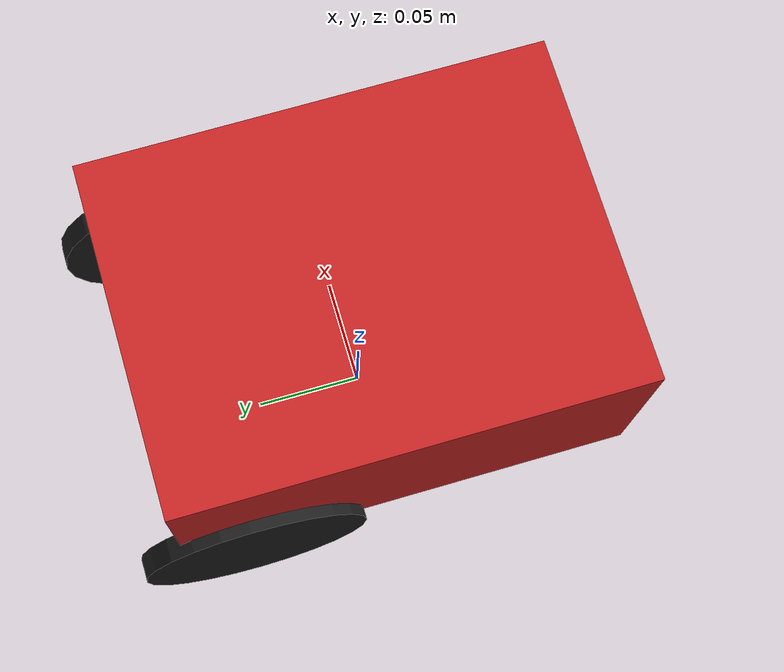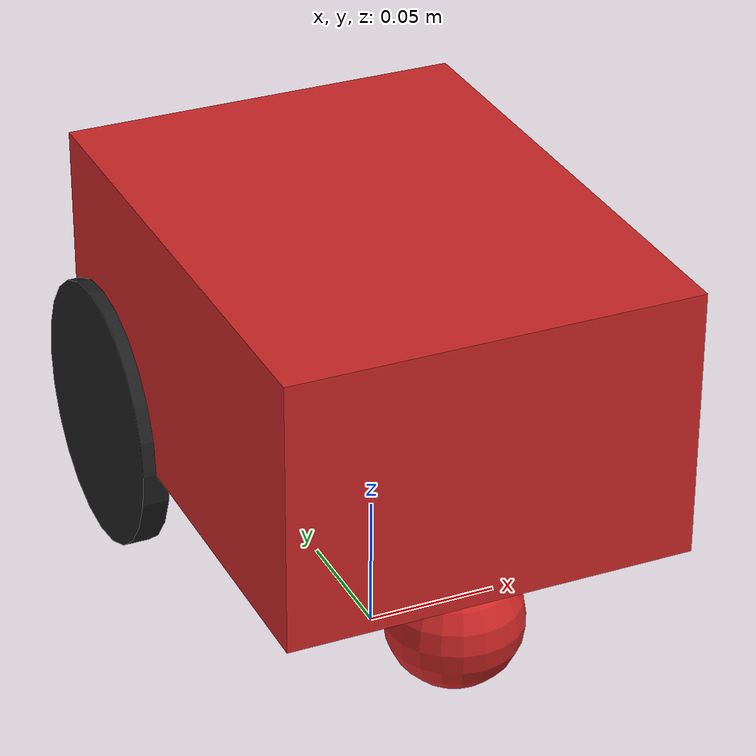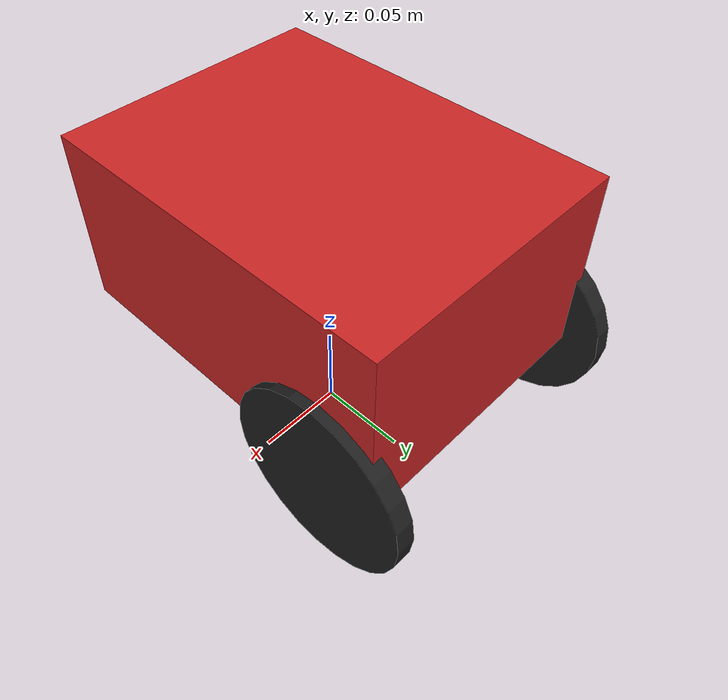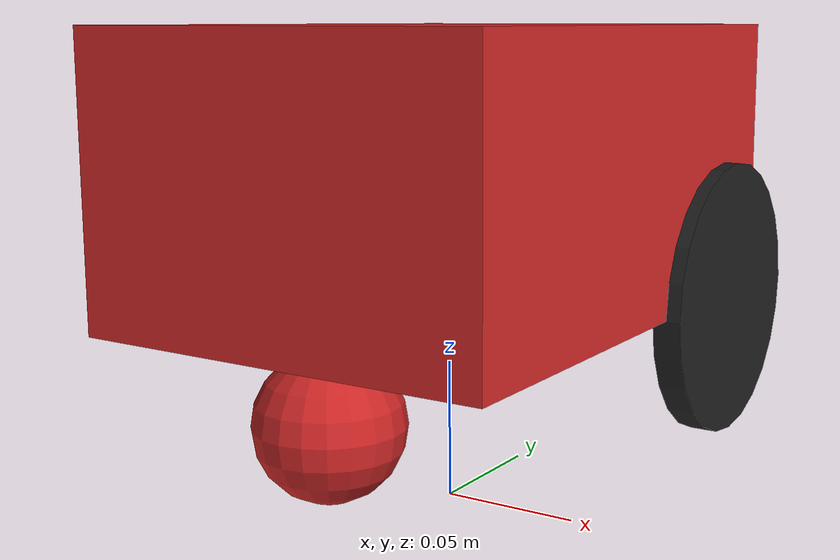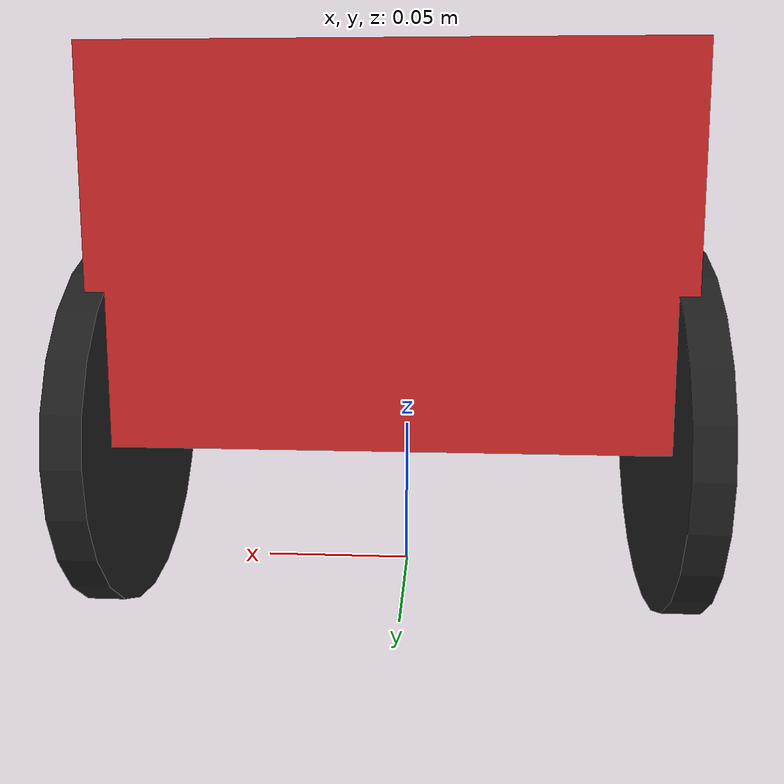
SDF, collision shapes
<?xml version='1.0'?>
<sdf version='1.7'>
  <model name='hot_wheels'>
    <static>false</static>

    <link name='base_link'>
      <pose>0 0 0.12 0 0 0</pose>

      <collision name='collision'>
        <geometry>
          <box>
            <size>0.15 0.2 0.1</size>
          </box>
        </geometry>
      </collision>

      <visual name='visual'>
        <geometry>
          <box>
            <size>0.15 0.2 0.1</size>
          </box>
        </geometry>

        <material>
          <script>
            <uri>file://media/materials/scripts/gazebo.material</uri>
            <name>Gazebo/Red</name>
          </script>
        </material>
      </visual>

      <visual name="hotwheels_logo_left">
        <pose>-0.08 -0.015 0 -1.5708 3.1416 1.5708 </pose>
        <geometry>
          <mesh>
            <uri>model://model_description/meshes/Hotwheels.stl</uri>
            <scale>0.001 0.001 0.001</scale>
          </mesh>
        </geometry>
        <material>
          <script>
            <uri>file://media/materials/scripts/gazebo.material</uri>
            <name>Gazebo/Yellow</name>
          </script>
        </material>
      </visual>

      <visual name="hotwheels_logo_right">
        <pose>0.08 -0.015 0 -1.5708 0 -1.5708 </pose>
        <geometry>
          <mesh>
            <uri>model://model_description/meshes/Hotwheels.stl</uri>
            <scale>0.001 0.001 0.001</scale>
          </mesh>
        </geometry>
        <material>
          <script>
            <uri>file://media/materials/scripts/gazebo.material</uri>
            <name>Gazebo/Yellow</name>
          </script>
        </material>
      </visual>

      <visual name="rubber_duck">
        <pose>0 0 0.07 0 0 0</pose>
        <geometry>
          <mesh>
            <uri>model://model_description/meshes/Rubber_Duck.stl</uri>
            <scale>0.001 0.001 0.001</scale>
          </mesh>
        </geometry>
        <material>
          <script>
            <uri>file://media/materials/scripts/gazebo.material</uri>
            <name>Gazebo/Yellow</name>
          </script>
        </material>
      </visual>

      <collision name='caster_wheel_collision'>
      <pose>0 -0.07 -0.075 0 0 0</pose>
        <geometry>
          <sphere>
            <radius>.025</radius>
          </sphere>
        </geometry>

        <surface>
          <friction>
            <ode>
              <mu>0</mu>
              <mu2>0</mu2>
              <slip1>1.0</slip1>
              <slip2>1.0</slip2>
            </ode>
          </friction>
        </surface>
      </collision>

      <visual name='caster_wheel_visual'>
      <pose>0 -0.07 -0.075 0 0 0</pose>
        <geometry>
          <sphere>
            <radius>.025</radius>
          </sphere>
        </geometry>
        <material>
          <script>
            <uri>file://media/materials/scripts/gazebo.material</uri>
            <name>Gazebo/Black</name>
          </script>
        </material>
      </visual>
    </link>

    <link name="left_wheel">
      <pose>-0.075 0.07 0.07 -1.5707 0 1.5707 </pose>

      <collision name="collision">
        <geometry>
          <cylinder>
            <radius>.05</radius>
            <length>.01</length>
          </cylinder>
        </geometry>
        </collision>

      <visual name="visual">
        <geometry>
            <cylinder>
            <radius>.05</radius>
            <length>.01</length>
          </cylinder>
        </geometry>
        <material>
          <script>
            <uri>file://media/materials/scripts/gazebo.material</uri>
            <name>Gazebo/Black</name>
          </script>
        </material>
      </visual>
    </link>

    <link name="right_wheel">
      <pose>0.075 0.07 0.07 0 1.5707 0 </pose>

      <collision name="collision">
        <geometry>
          <cylinder>
            <radius>.05</radius>
            <length>.01</length>
          </cylinder>
        </geometry>
      </collision>

      <visual name="visual">
        <geometry>
          <cylinder>
            <radius>.05</radius>
            <length>.01</length>
          </cylinder>
        </geometry>
        <material>
          <script>
            <uri>file://media/materials/scripts/gazebo.material</uri>
            <name>Gazebo/Black</name>
          </script>
        </material>
      </visual>
    </link>

      <joint type="revolute" name="left_wheel_joint">
        <pose>0 0 0 0 0 0</pose>
        <child>left_wheel</child>
        <parent>base_link</parent>
        <axis>
          <xyz>1 0 0</xyz>
        </axis>
      </joint>

      <joint type="revolute" name="right_wheel_joint">
        <pose>0 0 0 0 0 0</pose>
        <child>right_wheel</child>
        <parent>base_link</parent>
        <axis>
          <xyz>1 0 0</xyz>
        </axis>
      </joint>
  </model>

</sdf>
